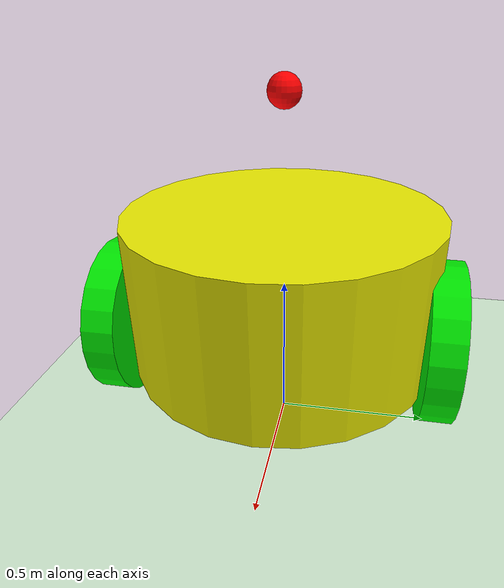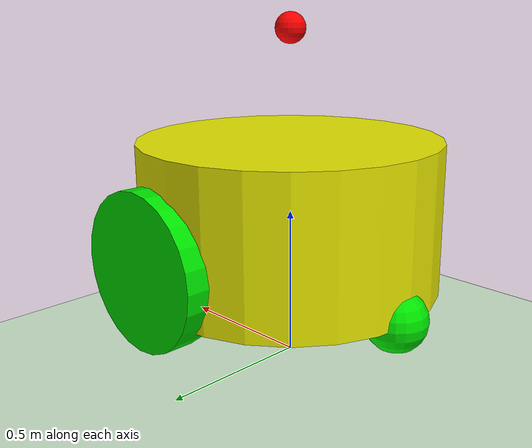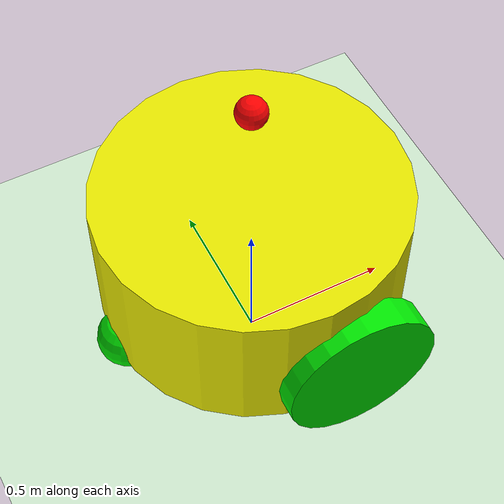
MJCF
<!-- most of the code is based on: differentialdrive.xml in  https://pab47.github.io/mujocopy.html -->
<mujoco model="wheel">
    <compiler inertiafromgeom="true" angle="degree" coordinate="local"/>
    <option timestep="0.01" integrator="RK4"/>
    <option gravity="0 0 -9.81"/>
    <visual>
        <global offwidth="480" offheight="480"/>
    </visual>
    <asset>
        <texture type="skybox" builtin="gradient" width="100" height="100" rgb1="1 1 1" rgb2="0 0 0"/>
        <texture name="texgeom" type="cube" builtin="flat" mark="cross" width="127" height="1278" rgb1="0.8 0.6 0.4" rgb2="0.8 0.6 0.4" markrgb="1 1 1" random="0.01"/>
        <texture name="texplane" type="2d" builtin="checker" rgb1="1 1 1" rgb2="1 1 1" width="100" height="100"/>
        <material name='MatPlane' texture="texplane" shininess="1" texrepeat="60 60" specular="1" reflectance="0.0"/>
        <material name='geom' texture="texgeom" texuniform="true"/>
    </asset>
    <worldbody>
        <light directional="true" cutoff="100" exponent="1" diffuse="1 1 1" specular=".1 .1 .1" pos="0 0 1.3" dir="-0 0 -1.3"/>
        <geom name='floor' material="MatPlane" pos='0 0 0' size='50 50 50' type='plane' conaffinity='1' rgba='0.8 0.9 0.8 1' condim='3'/>
        <body name="torso" pos="0 0 0.5" euler='0 0 0'>
            <joint name="root" type="free"/>
            <site name="camera_pos" rgba="1 0 0 1" pos="0 0 0.6" size="0.05"/>
            <camera euler="90 -90 0" fovy="120" name="rgb" pos="0 0 0.6"/>
            <geom name="torso_geom" type="cylinder" size=".5 .25" rgba=".9 .9 0 1"/>
            <geom type="sphere" pos="-0.45 0 -0.25" size="0.1" rgba="0 .9 0 1"/>
            <body name="left-tire" pos="0.1 0.5 -0.1" euler='90 0 0'>
                <joint name="left-wheel" type="hinge" axis="0 0 -1"/>
                <geom type="cylinder" size=".25 0.05" rgba="0 .9 0 1"/>
            </body>
            <body name="right-tire" pos="0.1 -0.5 -0.1" euler='90 0 0'>
                <joint name="right-wheel" type="hinge" axis="0 0 -1"/>
                <geom type="cylinder" size=".25 0.05" rgba="0 .9 0 1"/>
            </body>
        </body>
    </worldbody>
    <actuator>
        <velocity ctrllimited="true" name="left-velocity-servo" joint="left-wheel" ctrlrange="-10.0 10.0" kv="100"/>
        <velocity ctrllimited="true" name="right-velocity-servo" joint="right-wheel" ctrlrange="-10.0 10.0" kv="100"/>
    </actuator>
</mujoco>
